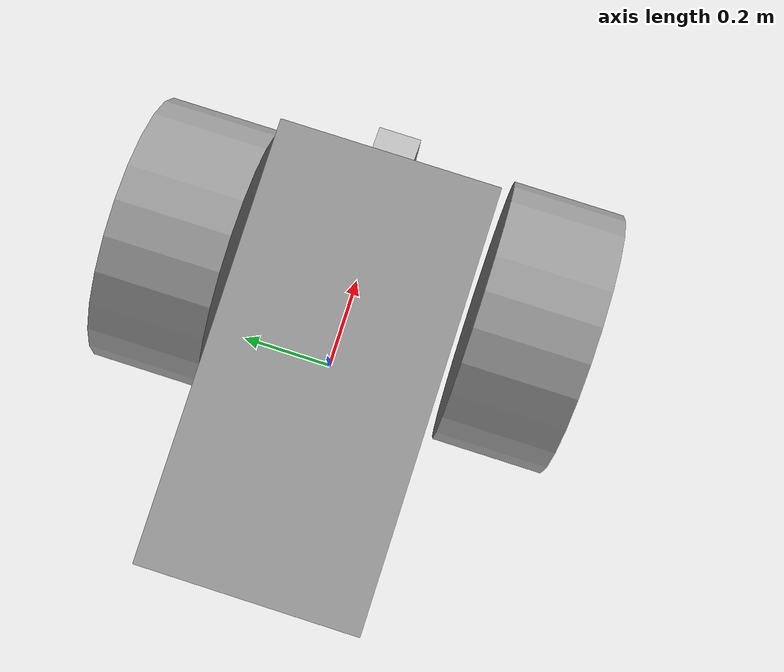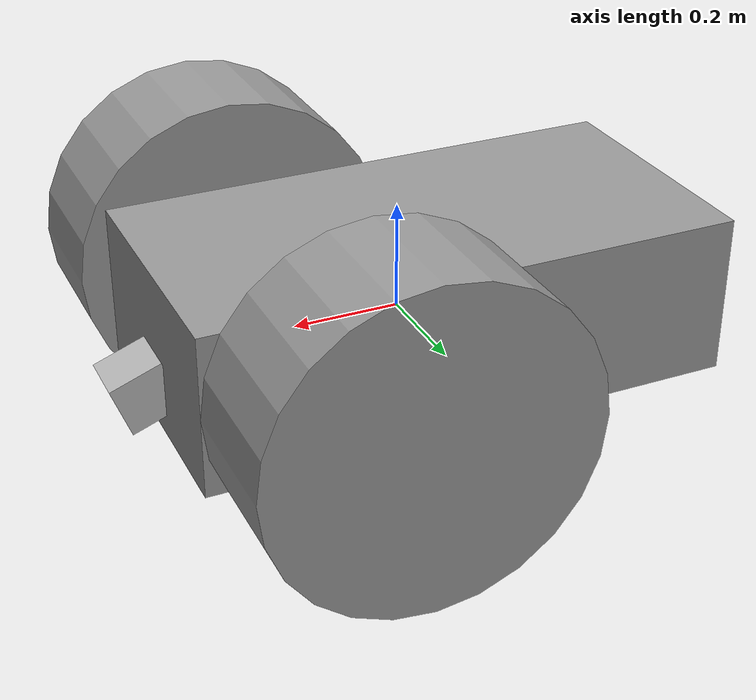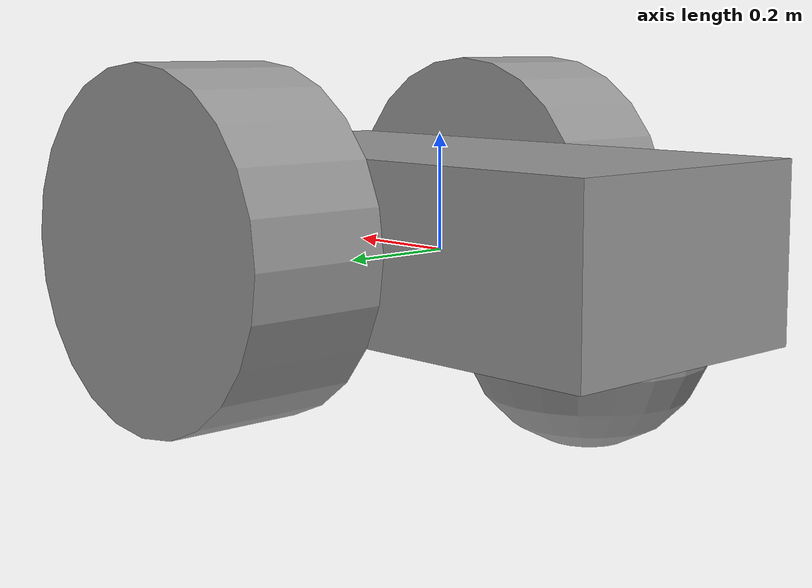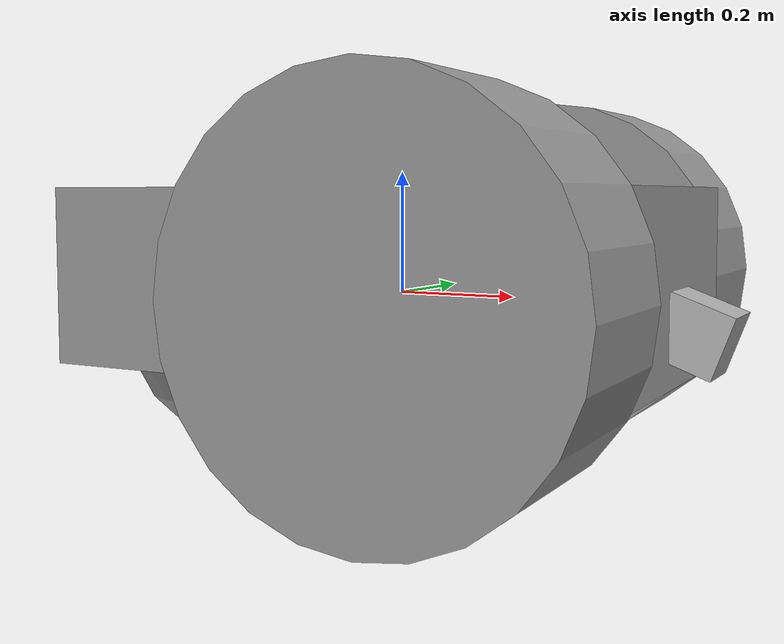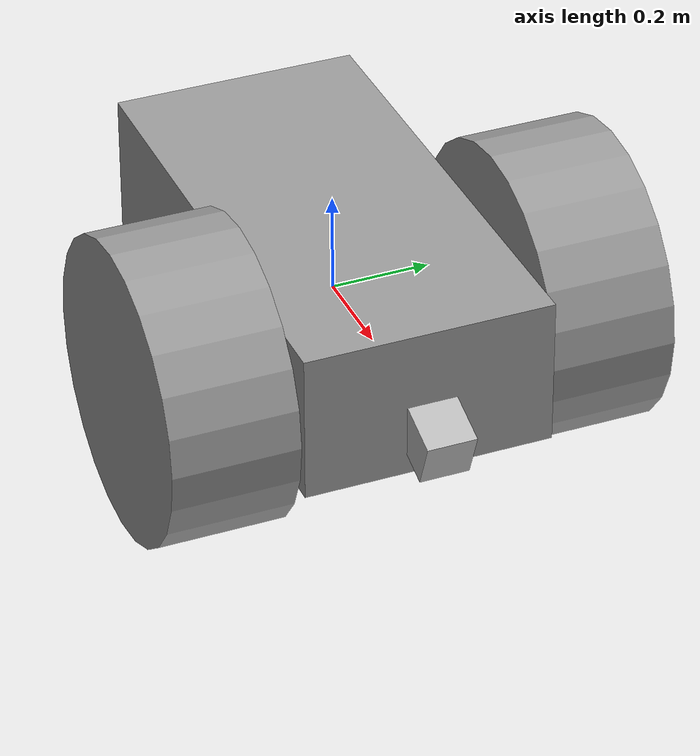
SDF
<?xml version='1.0'?>
<sdf version='1.7'>
  <model name='myrover_with_camera'>
    <link name='link_0'>
      <inertial>
        <mass>1</mass>
        <inertia>
          <ixx>0.166667</ixx>
          <ixy>0</ixy>
          <ixz>0</ixz>
          <iyy>0.166667</iyy>
          <iyz>0</iyz>
          <izz>0.166667</izz>
        </inertia>
        <pose>0 0 0 0 -0 0</pose>
      </inertial>
      <pose>-0.0375 0.006243 0.025 -0 -0 -0</pose>
      <gravity>1</gravity>
      <self_collide>0</self_collide>
      <kinematic>0</kinematic>
      <enable_wind>0</enable_wind>
      <visual name='visual'>
        <pose>0 0 0 0 -0 0</pose>
        <geometry>
          <box>
            <size>1 0.5 0.3</size>
          </box>
        </geometry>
        <material>
          <lighting>1</lighting>
          <script>
            <uri>file://media/materials/scripts/gazebo.material</uri>
            <name>Gazebo/Grey</name>
          </script>
          <shader type='pixel'>
            <normal_map>__default__</normal_map>
          </shader>
          <ambient>0.3 0.3 0.3 1</ambient>
          <diffuse>0.7 0.7 0.7 1</diffuse>
          <specular>0.01 0.01 0.01 1</specular>
          <emissive>0 0 0 1</emissive>
        </material>
        <transparency>0</transparency>
        <cast_shadows>1</cast_shadows>
      </visual>
      <collision name='collision'>
        <laser_retro>0</laser_retro>
        <max_contacts>10</max_contacts>
        <pose>0 0 0 0 -0 0</pose>
        <geometry>
          <box>
            <size>1 0.5 0.3</size>
          </box>
        </geometry>
        <surface>
          <friction>
            <ode>
              <mu>1</mu>
              <mu2>1</mu2>
              <fdir1>0 0 0</fdir1>
              <slip1>0</slip1>
              <slip2>0</slip2>
            </ode>
            <torsional>
              <coefficient>1</coefficient>
              <patch_radius>0</patch_radius>
              <surface_radius>0</surface_radius>
              <use_patch_radius>1</use_patch_radius>
              <ode>
                <slip>0</slip>
              </ode>
            </torsional>
          </friction>
          <bounce>
            <restitution_coefficient>0</restitution_coefficient>
            <threshold>1e+06</threshold>
          </bounce>
          <contact>
            <collide_without_contact>0</collide_without_contact>
            <collide_without_contact_bitmask>1</collide_without_contact_bitmask>
            <collide_bitmask>1</collide_bitmask>
            <ode>
              <soft_cfm>0</soft_cfm>
              <soft_erp>0.2</soft_erp>
              <kp>1e+13</kp>
              <kd>1</kd>
              <max_vel>0.01</max_vel>
              <min_depth>0</min_depth>
            </ode>
            <bullet>
              <split_impulse>1</split_impulse>
              <split_impulse_penetration_threshold>-0.01</split_impulse_penetration_threshold>
              <soft_cfm>0</soft_cfm>
              <soft_erp>0.2</soft_erp>
              <kp>1e+13</kp>
              <kd>1</kd>
            </bullet>
          </contact>
        </surface>
      </collision>
    </link>
    <link name='link_1'>
      <inertial>
        <mass>1</mass>
        <inertia>
          <ixx>0.145833</ixx>
          <ixy>0</ixy>
          <ixz>0</ixz>
          <iyy>0.145833</iyy>
          <iyz>0</iyz>
          <izz>0.125</izz>
        </inertia>
        <pose>0 0 0 0 -0 0</pose>
      </inertial>
      <pose>0.1625 0.381272 0.025 -0 -0 -0</pose>
      <gravity>1</gravity>
      <self_collide>0</self_collide>
      <kinematic>0</kinematic>
      <enable_wind>0</enable_wind>
      <visual name='visual'>
        <pose>0 0 0 1.5707 -0 0</pose>
        <geometry>
          <cylinder>
            <radius>0.3</radius>
            <length>0.25</length>
          </cylinder>
        </geometry>
        <material>
          <lighting>1</lighting>
          <script>
            <uri>file://media/materials/scripts/gazebo.material</uri>
            <name>Gazebo/Grey</name>
          </script>
          <shader type='pixel'>
            <normal_map>__default__</normal_map>
          </shader>
          <ambient>0.3 0.3 0.3 1</ambient>
          <diffuse>0.7 0.7 0.7 1</diffuse>
          <specular>0.01 0.01 0.01 1</specular>
          <emissive>0 0 0 1</emissive>
        </material>
        <transparency>0</transparency>
        <cast_shadows>1</cast_shadows>
      </visual>
      <collision name='collision'>
        <laser_retro>0</laser_retro>
        <max_contacts>10</max_contacts>
        <pose>0 0 0 1.5707 -0 0</pose>
        <geometry>
          <cylinder>
            <radius>0.3</radius>
            <length>0.25</length>
          </cylinder>
        </geometry>
        <surface>
          <friction>
            <ode>
              <mu>1</mu>
              <mu2>1</mu2>
              <fdir1>0 0 0</fdir1>
              <slip1>0</slip1>
              <slip2>0</slip2>
            </ode>
            <torsional>
              <coefficient>1</coefficient>
              <patch_radius>0</patch_radius>
              <surface_radius>0</surface_radius>
              <use_patch_radius>1</use_patch_radius>
              <ode>
                <slip>0</slip>
              </ode>
            </torsional>
          </friction>
          <bounce>
            <restitution_coefficient>0</restitution_coefficient>
            <threshold>1e+06</threshold>
          </bounce>
          <contact>
            <collide_without_contact>0</collide_without_contact>
            <collide_without_contact_bitmask>1</collide_without_contact_bitmask>
            <collide_bitmask>1</collide_bitmask>
            <ode>
              <soft_cfm>0</soft_cfm>
              <soft_erp>0.2</soft_erp>
              <kp>1e+13</kp>
              <kd>1</kd>
              <max_vel>0.01</max_vel>
              <min_depth>0</min_depth>
            </ode>
            <bullet>
              <split_impulse>1</split_impulse>
              <split_impulse_penetration_threshold>-0.01</split_impulse_penetration_threshold>
              <soft_cfm>0</soft_cfm>
              <soft_erp>0.2</soft_erp>
              <kp>1e+13</kp>
              <kd>1</kd>
            </bullet>
          </contact>
        </surface>
      </collision>
    </link>
    <link name='link_1_clone'>
      <inertial>
        <mass>1</mass>
        <inertia>
          <ixx>0.145833</ixx>
          <ixy>0</ixy>
          <ixz>0</ixz>
          <iyy>0.145833</iyy>
          <iyz>0</iyz>
          <izz>0.125</izz>
        </inertia>
        <pose>0 0 0 0 -0 0</pose>
      </inertial>
      <pose>0.2125 -0.393757 0.025 -0 -0 -0</pose>
      <gravity>1</gravity>
      <self_collide>0</self_collide>
      <kinematic>0</kinematic>
      <enable_wind>0</enable_wind>
      <visual name='visual'>
        <pose>0 0 0 1.5707 -0 0</pose>
        <geometry>
          <cylinder>
            <radius>0.3</radius>
            <length>0.25</length>
          </cylinder>
        </geometry>
        <material>
          <lighting>1</lighting>
          <script>
            <uri>file://media/materials/scripts/gazebo.material</uri>
            <name>Gazebo/Grey</name>
          </script>
          <shader type='pixel'>
            <normal_map>__default__</normal_map>
          </shader>
          <ambient>0.3 0.3 0.3 1</ambient>
          <diffuse>0.7 0.7 0.7 1</diffuse>
          <specular>0.01 0.01 0.01 1</specular>
          <emissive>0 0 0 1</emissive>
        </material>
        <transparency>0</transparency>
        <cast_shadows>1</cast_shadows>
      </visual>
      <collision name='collision'>
        <laser_retro>0</laser_retro>
        <max_contacts>10</max_contacts>
        <pose>0 0 0 1.5707 -0 0</pose>
        <geometry>
          <cylinder>
            <radius>0.3</radius>
            <length>0.25</length>
          </cylinder>
        </geometry>
        <surface>
          <friction>
            <ode>
              <mu>1</mu>
              <mu2>1</mu2>
              <fdir1>0 0 0</fdir1>
              <slip1>0</slip1>
              <slip2>0</slip2>
            </ode>
            <torsional>
              <coefficient>1</coefficient>
              <patch_radius>0</patch_radius>
              <surface_radius>0</surface_radius>
              <use_patch_radius>1</use_patch_radius>
              <ode>
                <slip>0</slip>
              </ode>
            </torsional>
          </friction>
          <bounce>
            <restitution_coefficient>0</restitution_coefficient>
            <threshold>1e+06</threshold>
          </bounce>
          <contact>
            <collide_without_contact>0</collide_without_contact>
            <collide_without_contact_bitmask>1</collide_without_contact_bitmask>
            <collide_bitmask>1</collide_bitmask>
            <ode>
              <soft_cfm>0</soft_cfm>
              <soft_erp>0.2</soft_erp>
              <kp>1e+13</kp>
              <kd>1</kd>
              <max_vel>0.01</max_vel>
              <min_depth>0</min_depth>
            </ode>
            <bullet>
              <split_impulse>1</split_impulse>
              <split_impulse_penetration_threshold>-0.01</split_impulse_penetration_threshold>
              <soft_cfm>0</soft_cfm>
              <soft_erp>0.2</soft_erp>
              <kp>1e+13</kp>
              <kd>1</kd>
            </bullet>
          </contact>
        </surface>
      </collision>
    </link>
    <link name='link_2'>
      <inertial>
        <mass>1</mass>
        <inertia>
          <ixx>0.1</ixx>
          <ixy>0</ixy>
          <ixz>0</ixz>
          <iyy>0.1</iyy>
          <iyz>0</iyz>
          <izz>0.1</izz>
        </inertia>
        <pose>0 0 0 0 -0 0</pose>
      </inertial>
      <pose>-0.3375 0.006243 -0.075 -0 -0 -0</pose>
      <gravity>1</gravity>
      <self_collide>0</self_collide>
      <kinematic>0</kinematic>
      <enable_wind>0</enable_wind>
      <visual name='visual'>
        <pose>0 0 0 0 -0 0</pose>
        <geometry>
          <sphere>
            <radius>0.2</radius>
          </sphere>
        </geometry>
        <material>
          <lighting>1</lighting>
          <script>
            <uri>file://media/materials/scripts/gazebo.material</uri>
            <name>Gazebo/Grey</name>
          </script>
          <shader type='pixel'>
            <normal_map>__default__</normal_map>
          </shader>
          <ambient>0.3 0.3 0.3 1</ambient>
          <diffuse>0.7 0.7 0.7 1</diffuse>
          <specular>0.01 0.01 0.01 1</specular>
          <emissive>0 0 0 1</emissive>
        </material>
        <transparency>0</transparency>
        <cast_shadows>1</cast_shadows>
      </visual>
      <collision name='collision'>
        <laser_retro>0</laser_retro>
        <max_contacts>10</max_contacts>
        <pose>0 0 0 0 -0 0</pose>
        <geometry>
          <sphere>
            <radius>0.2</radius>
          </sphere>
        </geometry>
        <surface>
          <friction>
            <ode>
              <mu>1</mu>
              <mu2>1</mu2>
              <fdir1>0 0 0</fdir1>
              <slip1>0</slip1>
              <slip2>0</slip2>
            </ode>
            <torsional>
              <coefficient>1</coefficient>
              <patch_radius>0</patch_radius>
              <surface_radius>0</surface_radius>
              <use_patch_radius>1</use_patch_radius>
              <ode>
                <slip>0</slip>
              </ode>
            </torsional>
          </friction>
          <bounce>
            <restitution_coefficient>0</restitution_coefficient>
            <threshold>1e+06</threshold>
          </bounce>
          <contact>
            <collide_without_contact>0</collide_without_contact>
            <collide_without_contact_bitmask>1</collide_without_contact_bitmask>
            <collide_bitmask>1</collide_bitmask>
            <ode>
              <soft_cfm>0</soft_cfm>
              <soft_erp>0.2</soft_erp>
              <kp>1e+13</kp>
              <kd>1</kd>
              <max_vel>0.01</max_vel>
              <min_depth>0</min_depth>
            </ode>
            <bullet>
              <split_impulse>1</split_impulse>
              <split_impulse_penetration_threshold>-0.01</split_impulse_penetration_threshold>
              <soft_cfm>0</soft_cfm>
              <soft_erp>0.2</soft_erp>
              <kp>1e+13</kp>
              <kd>1</kd>
            </bullet>
          </contact>
        </surface>
      </collision>
    </link>
    <model name='camera'>
      <pose>0.49401 0.009682 -0.041503 0 0.35651 -1e-06</pose>
      <link name='link'>
        <inertial>
          <mass>0.1</mass>
          <inertia>
            <ixx>0.000166667</ixx>
            <iyy>0.000166667</iyy>
            <izz>0.000166667</izz>
            <ixy>0</ixy>
            <ixz>0</ixz>
            <iyz>0</iyz>
          </inertia>
          <pose>0 0 0 0 -0 0</pose>
        </inertial>
        <collision name='collision'>
          <geometry>
            <box>
              <size>0.1 0.1 0.1</size>
            </box>
          </geometry>
          <max_contacts>10</max_contacts>
          <surface>
            <contact>
              <ode/>
            </contact>
            <bounce/>
            <friction>
              <torsional>
                <ode/>
              </torsional>
              <ode/>
            </friction>
          </surface>
        </collision>
        <visual name='visual'>
          <geometry>
            <box>
              <size>0.1 0.1 0.1</size>
            </box>
          </geometry>
        </visual>
        <sensor name='camera' type='camera'>
          <camera>
            <horizontal_fov>1.047</horizontal_fov>
            <image>
              <width>320</width>
              <height>240</height>
            </image>
            <clip>
              <near>0.1</near>
              <far>100</far>
            </clip>
          </camera>
          <plugin name='camera_controller' filename='libgazebo_ros_camera.so'>
            <alwaysOn>1</alwaysOn>
            <updateRate>0.0</updateRate>
            <cameraName>rrbot/camera1</cameraName>
            <imageTopicName>image_raw</imageTopicName>
            <cameraInfoTopicName>camera_info</cameraInfoTopicName>
            <frameName>camera_link</frameName>
            <hackBaseline>0.07</hackBaseline>
            <distortionK1>0.0</distortionK1>
            <distortionK2>0.0</distortionK2>
            <distortionK3>0.0</distortionK3>
            <distortionT1>0.0</distortionT1>
            <distortionT2>0.0</distortionT2>
          </plugin>
          <always_on>1</always_on>
          <update_rate>30</update_rate>
          <visualize>1</visualize>
        </sensor>
        <self_collide>0</self_collide>
        <enable_wind>0</enable_wind>
        <kinematic>0</kinematic>
      </link>
    </model>
    <joint name='link_0_JOINT_0_0' type='fixed'>
      <parent>link_0</parent>
      <child>camera::link</child>
      <pose>0 0 0 0 -0 0</pose>
      <physics>
        <ode>
          <limit>
            <cfm>0</cfm>
            <erp>0.2</erp>
          </limit>
          <suspension>
            <cfm>0</cfm>
            <erp>0.2</erp>
          </suspension>
        </ode>
      </physics>
    </joint>
    <joint name='link_0_JOINT_0' type='revolute'>
      <parent>link_0</parent>
      <child>link_1</child>
      <pose>0 0 0 0 -0 0</pose>
      <axis>
        <xyz>0 1 0</xyz>
        <limit>
          <lower>-1.79769e+308</lower>
          <upper>1.79769e+308</upper>
          <effort>-1</effort>
          <velocity>-1</velocity>
        </limit>
        <dynamics>
          <spring_reference>0</spring_reference>
          <spring_stiffness>0</spring_stiffness>
          <damping>0</damping>
          <friction>0</friction>
        </dynamics>
      </axis>
      <physics>
        <ode>
          <limit>
            <cfm>0</cfm>
            <erp>0.2</erp>
          </limit>
          <suspension>
            <cfm>0</cfm>
            <erp>0.2</erp>
          </suspension>
        </ode>
      </physics>
    </joint>
    <joint name='link_0_JOINT_1' type='revolute'>
      <parent>link_0</parent>
      <child>link_1_clone</child>
      <pose>0 0 0 0 -0 0</pose>
      <axis>
        <xyz>0 1 0</xyz>
        <limit>
          <lower>-1.79769e+308</lower>
          <upper>1.79769e+308</upper>
          <effort>-1</effort>
          <velocity>-1</velocity>
        </limit>
        <dynamics>
          <spring_reference>0</spring_reference>
          <spring_stiffness>0</spring_stiffness>
          <damping>0</damping>
          <friction>0</friction>
        </dynamics>
      </axis>
      <physics>
        <ode>
          <limit>
            <cfm>0</cfm>
            <erp>0.2</erp>
          </limit>
          <suspension>
            <cfm>0</cfm>
            <erp>0.2</erp>
          </suspension>
        </ode>
      </physics>
    </joint>
    <joint name='link_0_JOINT_2' type='ball'>
      <parent>link_0</parent>
      <child>link_2</child>
      <pose>0 0 0 0 -0 0</pose>
      <physics>
        <ode>
          <limit>
            <cfm>0</cfm>
            <erp>0.2</erp>
          </limit>
          <suspension>
            <cfm>0</cfm>
            <erp>0.2</erp>
          </suspension>
        </ode>
      </physics>
    </joint>
    <static>0</static>
    <allow_auto_disable>1</allow_auto_disable>
    <plugin name='simple_rover_diff_drive' filename='libgazebo_ros_diff_drive.so'>
      <update_rate>30</update_rate>
      <left_joint>link_0_JOINT_0</left_joint>
      <right_joint>link_0_JOINT_1</right_joint>
      <wheel_separation>0.52</wheel_separation>
      <wheel_diameter>0.28</wheel_diameter>
      <max_wheel_torque>20</max_wheel_torque>
      <max_wheel_acceleration>1.0</max_wheel_acceleration>
      <command_topic>cmd_vel</command_topic>
    </plugin>
  </model>
</sdf>
